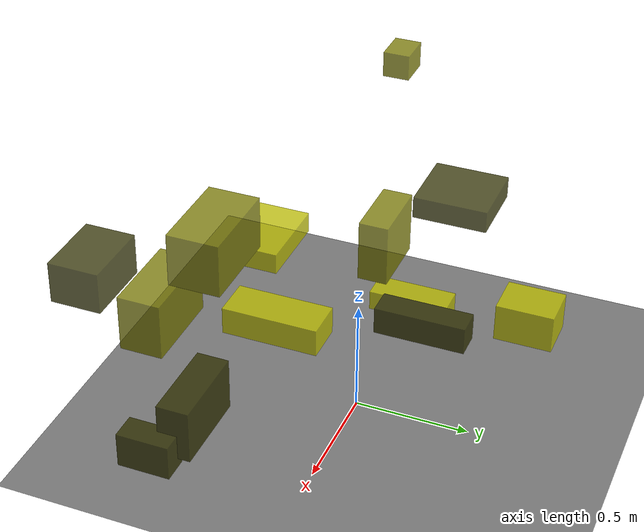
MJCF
<?xml version="1.0"?>
<mujoco model="obstacle_scene">
  <compiler angle="radian" coordinate="local"/>
  <option timestep="0.001" gravity="0 0 -9.81"/>

  <asset>
    <material name="obstacle_mat" rgba="0.8 0.8 0.0 0.8"/>
    <material name="ground_mat" rgba="0.5 0.5 0.5 1"/>
  </asset>

  <worldbody>
    <!-- Ground plane -->
    <geom name="ground" type="plane" size="3 3 0.1" material="ground_mat"/>

    <!-- Obstacles -->
    <body name="obstacle_0" pos="0.690947 -0.641940 0.080471">
      <geom name="obs_0" type="box" size="0.061098 0.116899 0.079718" rgba="0.2 0.2 0.0 0.8"/>
    </body>
    <body name="obstacle_1" pos="0.125203 -0.857370 0.378318">
      <geom name="obs_1" type="box" size="0.202333 0.098274 0.131150" rgba="0.5 0.5 0.0 0.8"/>
    </body>
    <body name="obstacle_2" pos="-0.217155 -0.564316 0.596502">
      <geom name="obs_2" type="box" size="0.180158 0.176767 0.046072" rgba="0.8 0.8 0.0 0.8"/>
    </body>
    <body name="obstacle_3" pos="-0.589678 0.237994 0.764106">
      <geom name="obs_3" type="box" size="0.157199 0.162352 0.048764" rgba="0.2 0.2 0.0 0.8"/>
    </body>
    <body name="obstacle_4" pos="0.151352 -0.580200 0.779717">
      <geom name="obs_4" type="box" size="0.201656 0.115332 0.119845" rgba="0.5 0.5 0.0 0.8"/>
    </body>
    <body name="obstacle_5" pos="0.587577 -0.111163 0.803760">
      <geom name="obs_5" type="box" size="0.082139 0.191044 0.055548" rgba="0.8 0.8 0.0 0.8"/>
    </body>
    <body name="obstacle_6" pos="0.706935 -0.823852 0.929778">
      <geom name="obs_6" type="box" size="0.149132 0.105409 0.086730" rgba="0.2 0.2 0.0 0.8"/>
    </body>
    <body name="obstacle_7" pos="-0.903950 -0.157537 1.199733">
      <geom name="obs_7" type="box" size="0.076708 0.058563 0.056793" rgba="0.5 0.5 0.0 0.8"/>
    </body>
    <body name="obstacle_8" pos="-0.488877 0.074390 0.240749">
      <geom name="obs_8" type="box" size="0.066807 0.177864 0.044970" rgba="0.8 0.8 0.0 0.8"/>
    </body>
    <body name="obstacle_9" pos="-0.113931 0.246941 0.417584">
      <geom name="obs_9" type="box" size="0.059860 0.197596 0.060742" rgba="0.2 0.2 0.0 0.8"/>
    </body>
    <body name="obstacle_10" pos="0.241164 0.186124 1.047802">
      <geom name="obs_10" type="box" size="0.133023 0.057530 0.122102" rgba="0.5 0.5 0.0 0.8"/>
    </body>
    <body name="obstacle_11" pos="0.541416 0.836655 1.053438">
      <geom name="obs_11" type="box" size="0.080565 0.103940 0.069725" rgba="0.8 0.8 0.0 0.8"/>
    </body>
    <body name="obstacle_12" pos="0.474427 -0.541374 0.166842">
      <geom name="obs_12" type="box" size="0.194543 0.072214 0.121939" rgba="0.2 0.2 0.0 0.8"/>
    </body>
  </worldbody>
</mujoco>
